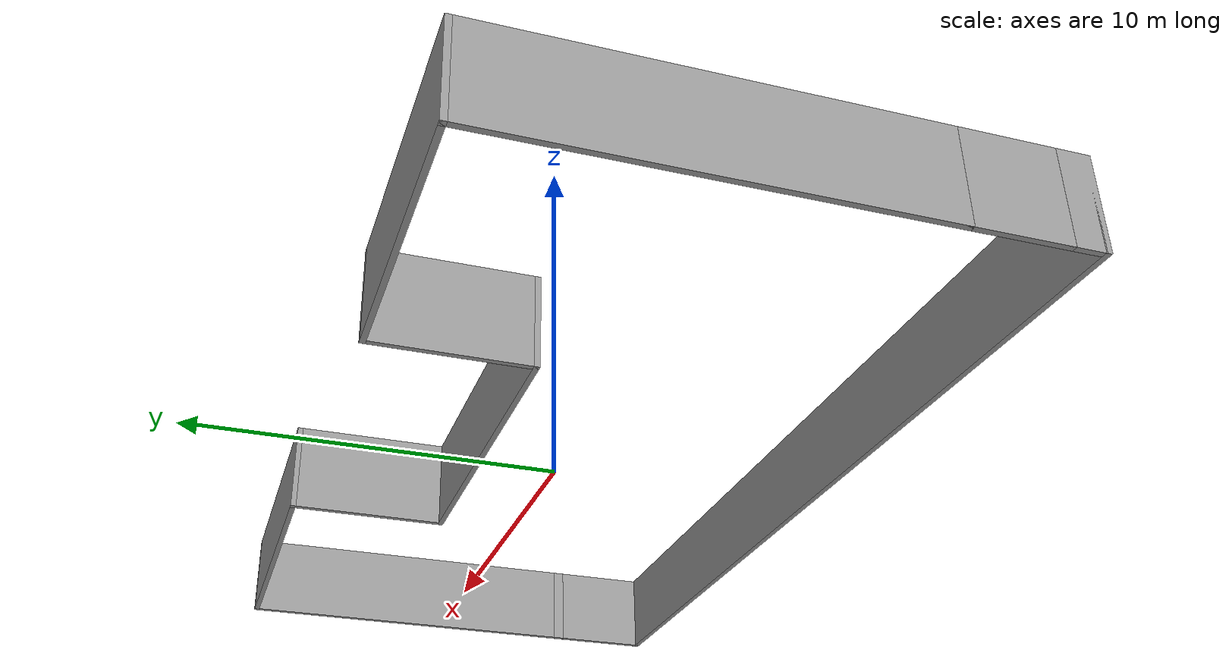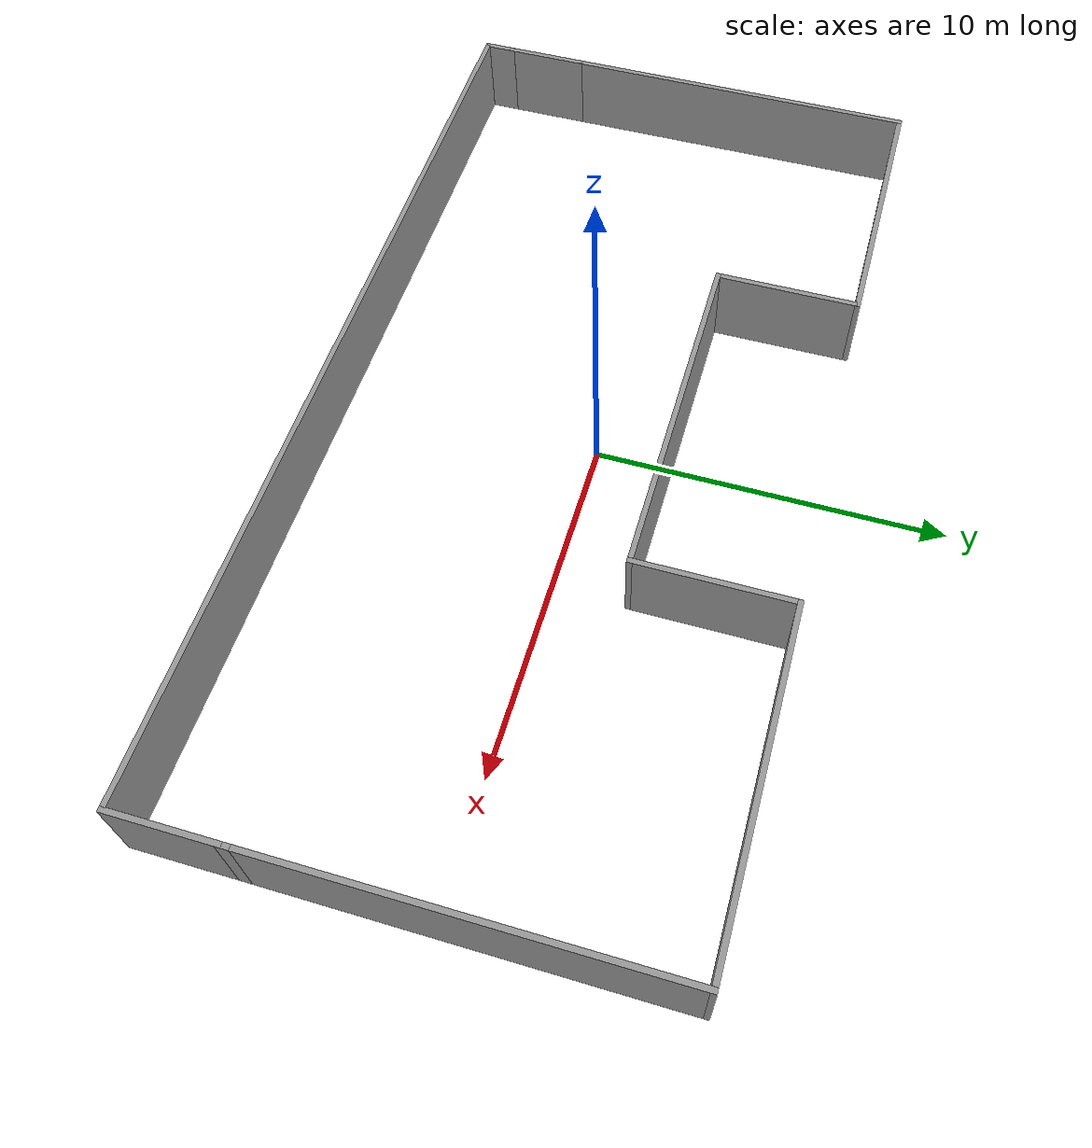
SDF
<?xml version='1.0'?>
<sdf version='1.6'>
  <model name='wall_room'>
    <pose frame=''>0.249649 -0.537157 0 0 -0 0</pose>
    <link name='Wall_10'>
      <collision name='Wall_10_Collision'>
        <geometry>
          <box>
            <size>4.25 0.15 2.5</size>
          </box>
        </geometry>
        <pose frame=''>0 0 1.25 0 -0 0</pose>
      </collision>
      <visual name='Wall_10_Visual'>
        <pose frame=''>0 0 1.25 0 -0 0</pose>
        <geometry>
          <box>
            <size>4.25 0.15 2.5</size>
          </box>
        </geometry>
        <material>
          <script>
            <uri>file://media/materials/scripts/gazebo.material</uri>
            <name>Gazebo/Grey</name>
          </script>
          <ambient>1 1 1 1</ambient>
        </material>
        <meta>
          <layer>0</layer>
        </meta>
      </visual>
      <pose frame=''>-5.65 4.725 0 0 -0 1.5708</pose>
    </link>
    <link name='Wall_11'>
      <collision name='Wall_11_Collision'>
        <geometry>
          <box>
            <size>8.05 0.15 2.5</size>
          </box>
        </geometry>
        <pose frame=''>0 0 1.25 0 -0 0</pose>
      </collision>
      <visual name='Wall_11_Visual'>
        <pose frame=''>0 0 1.25 0 -0 0</pose>
        <geometry>
          <box>
            <size>8.05 0.15 2.5</size>
          </box>
        </geometry>
        <material>
          <script>
            <uri>file://media/materials/scripts/gazebo.material</uri>
            <name>Gazebo/Grey</name>
          </script>
          <ambient>1 1 1 1</ambient>
        </material>
        <meta>
          <layer>0</layer>
        </meta>
      </visual>
      <pose frame=''>-9.6 6.775 0 0 -0 3.14159</pose>
    </link>
    <link name='Wall_13'>
      <collision name='Wall_13_Collision'>
        <geometry>
          <box>
            <size>2.5 0.15 2.5</size>
          </box>
        </geometry>
        <pose frame=''>0 0 1.25 0 -0 0</pose>
      </collision>
      <visual name='Wall_13_Visual'>
        <pose frame=''>0 0 1.25 0 -0 0</pose>
        <geometry>
          <box>
            <size>2.5 0.15 2.5</size>
          </box>
        </geometry>
        <material>
          <script>
            <uri>file://media/materials/scripts/gazebo.material</uri>
            <name>Gazebo/Grey</name>
          </script>
          <ambient>1 1 1 1</ambient>
        </material>
        <meta>
          <layer>0</layer>
        </meta>
      </visual>
      <pose frame=''>-13.55 -5 0 0 0 -1.5708</pose>
    </link>
    <link name='Wall_14'>
      <collision name='Wall_14_Collision'>
        <geometry>
          <box>
            <size>1 0.15 2.5</size>
          </box>
        </geometry>
        <pose frame=''>0 0 1.25 0 -0 0</pose>
      </collision>
      <visual name='Wall_14_Visual'>
        <pose frame=''>0 0 1.25 0 -0 0</pose>
        <geometry>
          <box>
            <size>1 0.15 2.5</size>
          </box>
        </geometry>
        <material>
          <script>
            <uri>file://media/materials/scripts/gazebo.material</uri>
            <name>Gazebo/Grey</name>
          </script>
          <ambient>1 1 1 1</ambient>
        </material>
        <meta>
          <layer>0</layer>
        </meta>
      </visual>
      <pose frame=''>-13.55 -6.6 0 0 0 -1.5708</pose>
    </link>
    <link name='Wall_15'>
      <collision name='Wall_15_Collision'>
        <geometry>
          <box>
            <size>27.25 0.15 2.5</size>
          </box>
        </geometry>
        <pose frame=''>0 0 1.25 0 -0 0</pose>
      </collision>
      <visual name='Wall_15_Visual'>
        <pose frame=''>0 0 1.25 0 -0 0</pose>
        <geometry>
          <box>
            <size>27.25 0.15 2.5</size>
          </box>
        </geometry>
        <material>
          <script>
            <uri>file://media/materials/scripts/gazebo.material</uri>
            <name>Gazebo/Grey</name>
          </script>
          <ambient>1 1 1 1</ambient>
        </material>
        <meta>
          <layer>0</layer>
        </meta>
      </visual>
      <pose frame=''>0 -7.025 0 0 -0 0</pose>
    </link>
    <link name='Wall_16'>
      <collision name='Wall_16_Collision'>
        <geometry>
          <box>
            <size>3 0.15 2.5</size>
          </box>
        </geometry>
        <pose frame=''>0 0 1.25 0 -0 0</pose>
      </collision>
      <visual name='Wall_16_Visual'>
        <pose frame=''>0 0 1.25 0 -0 0</pose>
        <geometry>
          <box>
            <size>3 0.15 2.5</size>
          </box>
        </geometry>
        <material>
          <script>
            <uri>file://media/materials/scripts/gazebo.material</uri>
            <name>Gazebo/Grey</name>
          </script>
          <ambient>1 1 1 1</ambient>
        </material>
        <meta>
          <layer>0</layer>
        </meta>
      </visual>
      <pose frame=''>13.55 -5.6 0 0 -0 1.5708</pose>
    </link>
    <link name='Wall_18'>
      <collision name='Wall_18_Collision'>
        <geometry>
          <box>
            <size>0.5 0.15 2.5</size>
          </box>
        </geometry>
        <pose frame=''>0 0 1.25 0 -0 0</pose>
      </collision>
      <visual name='Wall_18_Visual'>
        <pose frame=''>0 0 1.25 0 -0 0</pose>
        <geometry>
          <box>
            <size>0.5 0.15 2.5</size>
          </box>
        </geometry>
        <material>
          <script>
            <uri>file://media/materials/scripts/gazebo.material</uri>
            <name>Gazebo/Grey</name>
          </script>
          <ambient>1 1 1 1</ambient>
        </material>
        <meta>
          <layer>0</layer>
        </meta>
      </visual>
      <pose frame=''>13.55 -4 0 0 -0 1.5708</pose>
    </link>
    <link name='Wall_4'>
      <collision name='Wall_4_Collision'>
        <geometry>
          <box>
            <size>10.75 0.15 2.5</size>
          </box>
        </geometry>
        <pose frame=''>0 0 1.25 0 -0 0</pose>
      </collision>
      <visual name='Wall_4_Visual'>
        <pose frame=''>0 0 1.25 0 -0 0</pose>
        <geometry>
          <box>
            <size>10.75 0.15 2.5</size>
          </box>
        </geometry>
        <material>
          <script>
            <uri>file://media/materials/scripts/gazebo.material</uri>
            <name>Gazebo/Grey</name>
          </script>
          <ambient>1 1 1 1</ambient>
        </material>
        <meta>
          <layer>0</layer>
        </meta>
      </visual>
      <pose frame=''>-13.55 1.475 0 0 0 -1.5708</pose>
    </link>
    <link name='Wall_6'>
      <collision name='Wall_6_Collision'>
        <geometry>
          <box>
            <size>11 0.15 2.5</size>
          </box>
        </geometry>
        <pose frame=''>0 0 1.25 0 -0 0</pose>
      </collision>
      <visual name='Wall_6_Visual'>
        <pose frame=''>0 0 1.25 0 -0 0</pose>
        <geometry>
          <box>
            <size>11 0.15 2.5</size>
          </box>
        </geometry>
        <material>
          <script>
            <uri>file://media/materials/scripts/gazebo.material</uri>
            <name>Gazebo/Grey</name>
          </script>
          <ambient>1 1 1 1</ambient>
        </material>
        <meta>
          <layer>0</layer>
        </meta>
      </visual>
      <pose frame=''>13.55 1.6 0 0 -0 1.5708</pose>
    </link>
    <link name='Wall_7'>
      <collision name='Wall_7_Collision'>
        <geometry>
          <box>
            <size>9.5 0.15 2.5</size>
          </box>
        </geometry>
        <pose frame=''>0 0 1.25 0 -0 0</pose>
      </collision>
      <visual name='Wall_7_Visual'>
        <pose frame=''>0 0 1.25 0 -0 0</pose>
        <geometry>
          <box>
            <size>9.5 0.15 2.5</size>
          </box>
        </geometry>
        <material>
          <script>
            <uri>file://media/materials/scripts/gazebo.material</uri>
            <name>Gazebo/Grey</name>
          </script>
          <ambient>1 1 1 1</ambient>
        </material>
        <meta>
          <layer>0</layer>
        </meta>
      </visual>
      <pose frame=''>8.875 7.025 0 0 -0 3.14159</pose>
    </link>
    <link name='Wall_8'>
      <collision name='Wall_8_Collision'>
        <geometry>
          <box>
            <size>4.5 0.15 2.5</size>
          </box>
        </geometry>
        <pose frame=''>0 0 1.25 0 -0 0</pose>
      </collision>
      <visual name='Wall_8_Visual'>
        <pose frame=''>0 0 1.25 0 -0 0</pose>
        <geometry>
          <box>
            <size>4.5 0.15 2.5</size>
          </box>
        </geometry>
        <material>
          <script>
            <uri>file://media/materials/scripts/gazebo.material</uri>
            <name>Gazebo/Grey</name>
          </script>
          <ambient>1 1 1 1</ambient>
        </material>
        <meta>
          <layer>0</layer>
        </meta>
      </visual>
      <pose frame=''>4.2 4.85 0 0 0 -1.5708</pose>
    </link>
    <link name='Wall_9'>
      <collision name='Wall_9_Collision'>
        <geometry>
          <box>
            <size>10 0.15 2.5</size>
          </box>
        </geometry>
        <pose frame=''>0 0 1.25 0 -0 0</pose>
      </collision>
      <visual name='Wall_9_Visual'>
        <pose frame=''>0 0 1.25 0 -0 0</pose>
        <geometry>
          <box>
            <size>10 0.15 2.5</size>
          </box>
        </geometry>
        <material>
          <script>
            <uri>file://media/materials/scripts/gazebo.material</uri>
            <name>Gazebo/Grey</name>
          </script>
          <ambient>1 1 1 1</ambient>
        </material>
        <meta>
          <layer>0</layer>
        </meta>
      </visual>
      <pose frame=''>-0.725 2.675 0 0 -0 3.14159</pose>
    </link>
    <static>1</static>
  </model>
</sdf>
